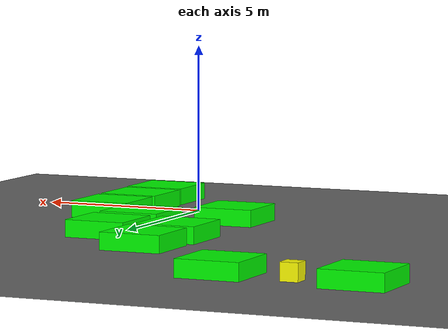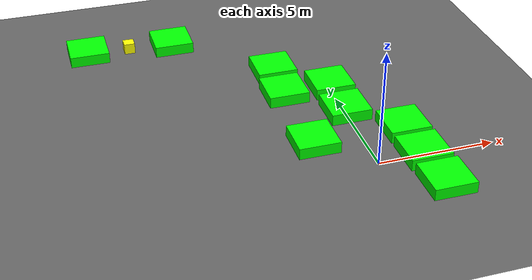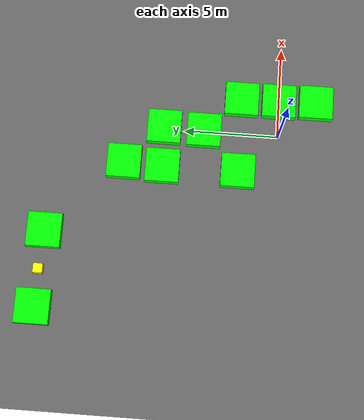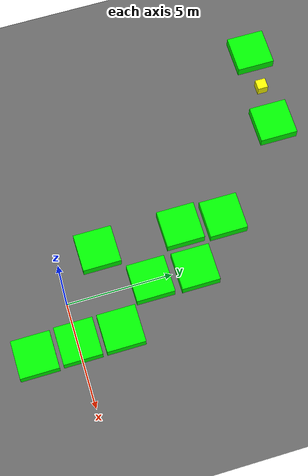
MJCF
<mujoco model="lvl4_standard_obs10_d3long_seed39">
    <compiler angle="degree" coordinate="local" inertiafromgeom="true"/>
    <option integrator="RK4" timestep="0.01"/>

    <asset>
        <texture builtin="gradient" height="100" rgb1="0.6 0.8 1" rgb2="0 0 0" type="skybox" width="100"/>
        <texture name="floor_texture" type="2d" builtin="checker" width="100" height="100" rgb1="0 0 0" rgb2="0.8 0.8 0.8"/>
        <material name="MatPlane" reflectance="0.5" shininess="1" specular="1" texrepeat="10 10" texture="floor_texture"/>
    </asset>

    <!-- Excluding the contact between the agent and the goal, and the agent and the floor -->
    <contact>
        <exclude body1="agent" body2="goal"/>
        <exclude body1 = "agent" body2 = "floor"/>
    </contact>

    <extension>
        <plugin plugin = "mujoco.pid">
            <instance name = "pid1">
                <config key="kp" value="2"/>
                <config key="ki" value="0"/>
                <config key="kd" value="55"/>
            </instance>
        </plugin>
    </extension>

    <worldbody>
        <light cutoff="100" diffuse="1 1 1" dir="-0 0 -1.3" directional="true" exponent="1" pos="0 0 1.3" specular=".1 .1 .1"/>
        <body name="floor" pos="0 0 0">
            <geom name="floor_geom" type="plane" size="20 20 0.1" material="MatPlane"/>
        </body>

                <body name="goal" pos="0.0000 0.0000 0">
            <geom name="goal_geom" type="plane" size="0.5 0.5 1" pos="0 0 0" rgba="1 0 0 1"/>
        </body>

                <body name="agent" pos="-8.0000 12.0000 0.250">
            <joint name="j1" type="slide" axis ="1 0 0 "/>
            <joint name="j2" type="slide" axis ="0 1 0 "/>
            <geom name="agent_geom" type="box" size="0.25 0.25 0.250" rgba="1 1 0 1"/>
        </body>

        <body name="obstacle1" pos="-9.9447 12.0756 0.250">  <geom name="obstacle1_geom" type="box" size="0.9000 0.9000 0.250" rgba="0 1 0 1"/></body>
        <body name="obstacle2" pos="-5.9640 11.9017 0.250">  <geom name="obstacle2_geom" type="box" size="0.9000 0.9000 0.250" rgba="0 1 0 1"/></body>
        <body name="obstacle3" pos="-1.9694 8.0785 0.250">  <geom name="obstacle3_geom" type="box" size="0.9000 0.9000 0.250" rgba="0 1 0 1"/></body>
        <body name="obstacle4" pos="-2.0695 6.0325 0.250">  <geom name="obstacle4_geom" type="box" size="0.9000 0.9000 0.250" rgba="0 1 0 1"/></body>
        <body name="obstacle5" pos="0.0895 6.0840 0.250">  <geom name="obstacle5_geom" type="box" size="0.9000 0.9000 0.250" rgba="0 1 0 1"/></body>
        <body name="obstacle6" pos="0.0495 3.9559 0.250">  <geom name="obstacle6_geom" type="box" size="0.9000 0.9000 0.250" rgba="0 1 0 1"/></body>
        <body name="obstacle7" pos="-2.0632 2.0316 0.250">  <geom name="obstacle7_geom" type="box" size="0.9000 0.9000 0.250" rgba="0 1 0 1"/></body>
        <body name="obstacle8" pos="1.9288 2.0282 0.250">  <geom name="obstacle8_geom" type="box" size="0.9000 0.9000 0.250" rgba="0 1 0 1"/></body>
        <body name="obstacle9" pos="1.9404 0.0319 0.250">  <geom name="obstacle9_geom" type="box" size="0.9000 0.9000 0.250" rgba="0 1 0 1"/></body>
        <body name="obstacle10" pos="1.9998 -1.9577 0.250">  <geom name="obstacle10_geom" type="box" size="0.9000 0.9000 0.250" rgba="0 1 0 1"/></body>

    </worldbody>

    <sensor>
<!-- SENSORS -->

        <distance name="dist1" geom1="agent_geom" geom2="obstacle1_geom" cutoff="1.5"/>
        <distance name="dist2" geom1="agent_geom" geom2="obstacle2_geom" cutoff="1.5"/>
        <distance name="dist3" geom1="agent_geom" geom2="obstacle3_geom" cutoff="1.5"/>
        <distance name="dist4" geom1="agent_geom" geom2="obstacle4_geom" cutoff="1.5"/>
        <distance name="dist5" geom1="agent_geom" geom2="obstacle5_geom" cutoff="1.5"/>
        <distance name="dist6" geom1="agent_geom" geom2="obstacle6_geom" cutoff="1.5"/>
        <distance name="dist7" geom1="agent_geom" geom2="obstacle7_geom" cutoff="1.5"/>
        <distance name="dist8" geom1="agent_geom" geom2="obstacle8_geom" cutoff="1.5"/>
        <distance name="dist9" geom1="agent_geom" geom2="obstacle9_geom" cutoff="1.5"/>
        <distance name="dist10" geom1="agent_geom" geom2="obstacle10_geom" cutoff="1.5"/>
</sensor>

    <actuator>
        <plugin joint="j1" plugin="mujoco.pid" instance="pid1" />
        <plugin joint="j2" plugin="mujoco.pid" instance="pid1"/>
    </actuator>
</mujoco>
